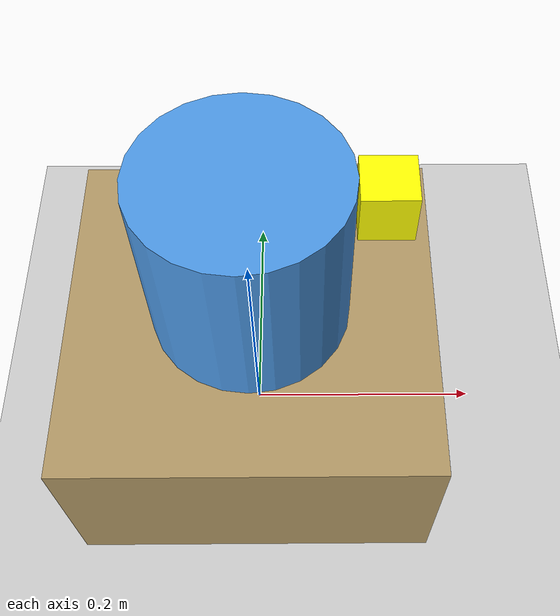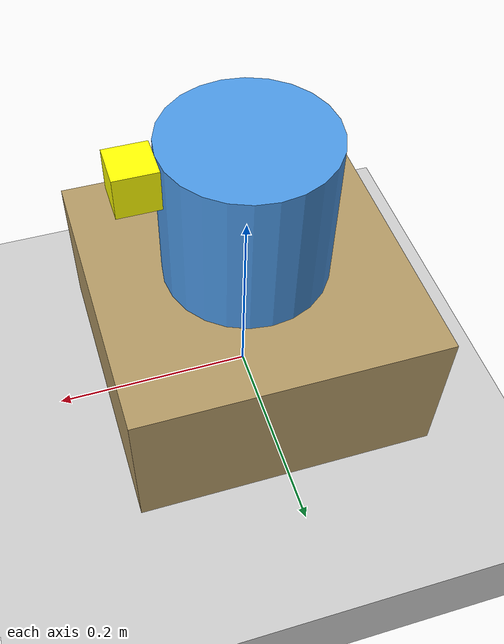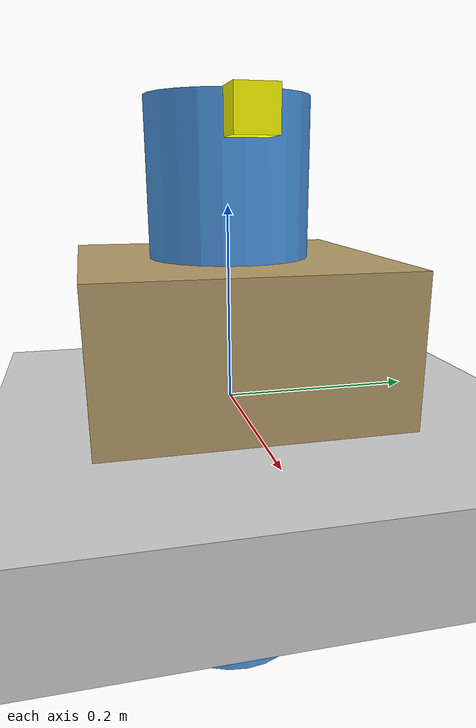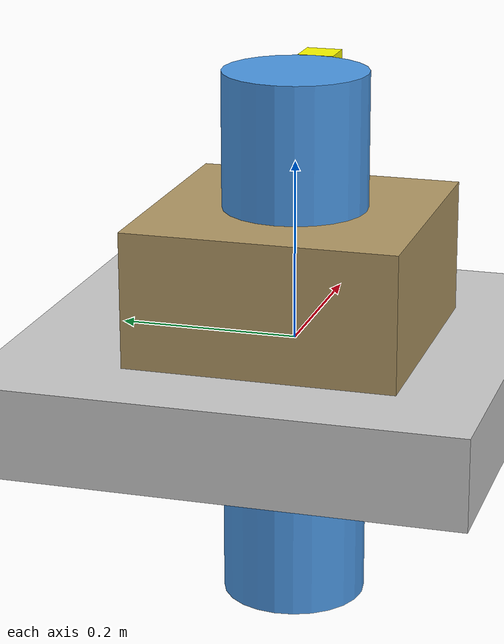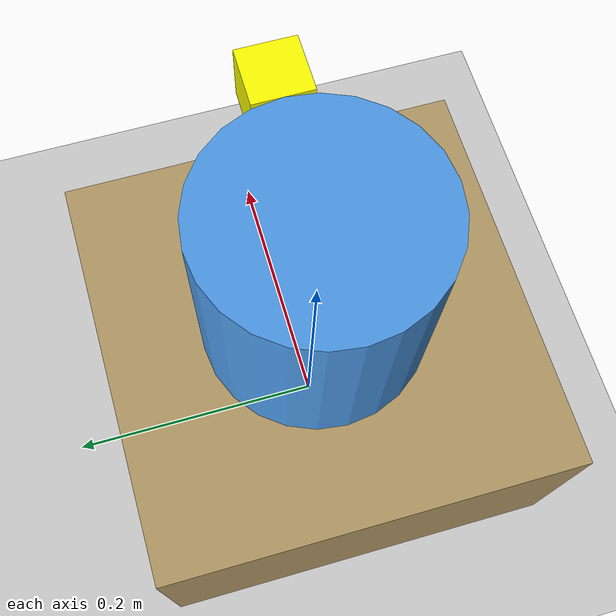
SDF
<sdf version="1.10">
 <world name="default">
  <scene>
   <ambient>0.300000012 0.300000012 0.300000012 1</ambient>
   <background>0.300000012 0.300000012 0.300000012 1</background>
   <shadows>true</shadows>
  </scene>
  <gravity>0 0 -9.8000000000000007</gravity>
  <magnetic_field>5.5644999999999998e-06 2.2875799999999999e-05 -4.2388400000000002e-05</magnetic_field>
  <atmosphere type="adiabatic"/>
  <physics type="ode">
   <max_step_size>0.001</max_step_size>
   <real_time_factor>1</real_time_factor>
   <real_time_update_rate>1000</real_time_update_rate>
  </physics>
  <model name="ground">
   <static>true</static>
   <link name="link">
    <pose>0 0 -0.050000000000000003 0 0 0</pose>
    <visual name="visual">
     <geometry><box><size>20 20 0.10000000000000001</size></box></geometry>
     <material>
      <ambient>0.400000006 0.400000006 0.400000006 1</ambient>
      <diffuse>0.800000012 0.800000012 0.800000012 1</diffuse>
     </material>
    </visual>
    <collision name="collision"><geometry><box><size>20 20 0.10000000000000001</size></box></geometry></collision>
    <inertial>
     <mass>1</mass>
     <inertia><ixx>1</ixx><ixy>0</ixy><ixz>0</ixz><iyy>1</iyy><iyz>0</iyz><izz>1</izz></inertia>
    </inertial>
   </link>
  </model>
  <model name="robot_with_camera">
   <link name="chassis_x">
    <inertial>
     <mass>0.001</mass>
     <inertia><ixx>1e-06</ixx><iyy>1e-06</iyy><izz>1e-06</izz><ixy>0</ixy><ixz>0</ixz><iyz>0</iyz></inertia>
    </inertial>
   </link>
   <joint name="drive_x_joint" type="prismatic">
    <parent>world</parent>
    <child>chassis_x</child>
    <axis>
     <xyz>1 0 0</xyz>
     <limit><lower>-9</lower><upper>9</upper></limit>
     <dynamics><damping>1.0</damping><friction>0</friction></dynamics>
    </axis>
   </joint>
   <link name="chassis_y">
    <inertial>
     <mass>0.001</mass>
     <inertia><ixx>1e-06</ixx><iyy>1e-06</iyy><izz>1e-06</izz><ixy>0</ixy><ixz>0</ixz><iyz>0</iyz></inertia>
    </inertial>
   </link>
   <joint name="drive_y_joint" type="prismatic">
    <parent>chassis_x</parent>
    <child>chassis_y</child>
    <axis>
     <xyz>0 1 0</xyz>
     <limit><lower>-9</lower><upper>9</upper></limit>
     <dynamics><damping>1.0</damping><friction>0</friction></dynamics>
    </axis>
   </joint>
   <link name="base">
    <pose>0 0 0.074999999999999997 0 0 0</pose>
    <inertial>
     <mass>0.5</mass>
     <inertia><ixx>0.01</ixx><iyy>0.01</iyy><izz>0.01</izz><ixy>0</ixy><ixz>0</ixz><iyz>0</iyz></inertia>
    </inertial>
    <visual name="base_visual">
     <geometry><box><size>0.29999999999999999 0.29999999999999999 0.14999999999999999</size></box></geometry>
     <material>
      <ambient>0.5 0.400000006 0.300000012 1</ambient>
      <diffuse>0.699999988 0.600000024 0.400000006 1</diffuse>
     </material>
    </visual>
    <collision name="base_collision">
     <geometry><box><size>0.29999999999999999 0.29999999999999999 0.14999999999999999</size></box></geometry>
    </collision>
   </link>
   <joint name="base_yaw_joint" type="revolute">
    <parent>chassis_y</parent>
    <child>base</child>
    <axis><xyz>0 0 1</xyz><dynamics><damping>5</damping><friction>0</friction></dynamics></axis>
   </joint>
   <link name="cylinder">
    <inertial>
     <mass>0.0001</mass>
     <inertia>
      <ixx>9.9999999999999995e-07</ixx>
      <iyy>9.9999999999999995e-07</iyy>
      <izz>9.9999999999999995e-07</izz>
      <ixy>0</ixy>
      <ixz>0</ixz>
      <iyz>0</iyz>
     </inertia>
    </inertial>
    <visual name="cylinder_visual">
     <geometry>
      <cylinder><radius>0.080000000000000002</radius><length>0.59999999999999998</length></cylinder>
     </geometry>
     <material>
      <ambient>0.200000003 0.5 0.800000012 1</ambient>
      <diffuse>0.300000012 0.600000024 0.899999976 1</diffuse>
     </material>
    </visual>
    <collision name="cylinder_collision">
     <geometry>
      <cylinder><radius>0.080000000000000002</radius><length>0.59999999999999998</length></cylinder>
     </geometry>
    </collision>
    <visual name="rotation_marker">
     <pose>0.10000000000000001 0 0.28000000000000003 0 0 0</pose>
     <geometry><box><size>0.040000000000000001 0.040000000000000001 0.040000000000000001</size></box></geometry>
     <material><ambient>1 1 0 1</ambient><diffuse>1 1 0 1</diffuse></material>
    </visual>
    <sensor name="camera" type="camera">
     <pose>0.10000000000000001 0 0.28000000000000003 0 0 0</pose>
     <topic>/camera</topic>
     <update_rate>30</update_rate>
     <enable_metrics>false</enable_metrics>
     <camera name="__default__">
      <horizontal_fov>1.0469999999999999</horizontal_fov>
      <image><width>640</width><height>480</height><format>RGB_INT8</format><anti_aliasing>4</anti_aliasing></image>
      <camera_info_topic>/camera/camera_info</camera_info_topic>
      <triggered>false</triggered>
      <clip><near>0.10000000000000001</near><far>100</far></clip>
      <save enabled="false"><path>__default__</path></save>
      <visibility_mask>4294967295</visibility_mask>
      <noise><type>none</type><mean>0</mean><stddev>0</stddev></noise>
      <distortion><k1>0</k1><k2>0</k2><k3>0</k3><p1>0</p1><p2>0</p2><center>0.5 0.5</center></distortion>
      <lens>
       <type>stereographic</type>
       <scale_to_hfov>true</scale_to_hfov>
       <cutoff_angle>1.5707963267948966</cutoff_angle>
       <env_texture_size>256</env_texture_size>
      </lens>
     </camera>
    </sensor>
    <sensor name="depth_camera" type="depth_camera">
     <pose>0.10000000000000001 0 0.28000000000000003 0 0 0</pose>
     <topic>/depth_camera</topic>
     <update_rate>15</update_rate>
     <enable_metrics>false</enable_metrics>
     <camera name="__default__">
      <horizontal_fov>1.0469999999999999</horizontal_fov>
      <image><width>640</width><height>480</height><format>R_FLOAT32</format></image>
      <clip><near>0.10000000000000001</near><far>20</far></clip>
      <noise><type>none</type><mean>0</mean><stddev>0</stddev></noise>
      <depth_camera><output>depths</output></depth_camera>
     </camera>
    </sensor>
   </link>
   <joint name="camera_joint" type="fixed">
    <parent>base</parent>
    <child>cylinder</child>
    <pose>0 0 0.17500000000000004 0 0 0</pose>
   </joint>
   <plugin name="gz::sim::systems::JointPositionController" filename="gz-sim-joint-position-controller-system">
    <joint_name>base_yaw_joint</joint_name>
    <topic>camera_joint_controller/commands</topic>
    <p_gain>15.0</p_gain>
    <i_gain>0.0</i_gain>
    <d_gain>20.0</d_gain>
   </plugin>
   <plugin name="gz::sim::systems::JointStatePublisher" filename="gz-sim-joint-state-publisher-system">
    <topic>joint_state</topic>
    <joint_name>drive_x_joint</joint_name>
    <joint_name>drive_y_joint</joint_name>
    <joint_name>base_yaw_joint</joint_name>
   </plugin>
   <plugin name="gz::sim::systems::JointPositionController" filename="gz-sim-joint-position-controller-system">
    <joint_name>drive_x_joint</joint_name>
    <topic>drive_x/commands</topic>
    <p_gain>30.0</p_gain>
    <i_gain>0.0</i_gain>
    <d_gain>10.0</d_gain>
   </plugin>
   <plugin name="gz::sim::systems::JointPositionController" filename="gz-sim-joint-position-controller-system">
    <joint_name>drive_y_joint</joint_name>
    <topic>drive_y/commands</topic>
    <p_gain>30.0</p_gain>
    <i_gain>0.0</i_gain>
    <d_gain>10.0</d_gain>
   </plugin>
   <plugin name="gz::sim::systems::Sensors" filename="gz-sim-sensors-system"/>
   <static>false</static>
  </model>
  <light name="sun" type="directional">
   <pose>0 0 10 0 0 0</pose>
   <intensity>1</intensity>
   <direction>0.5 0.10000000000000001 -1</direction>
   <diffuse>0.899999976 0.899999976 0.899999976 1</diffuse>
   <specular>0.300000012 0.300000012 0.300000012 1</specular>
   <attenuation><range>10</range><linear>1</linear><constant>1</constant><quadratic>0</quadratic></attenuation>
   <spot><inner_angle>0</inner_angle><outer_angle>0</outer_angle><falloff>0</falloff></spot>
  </light>
 </world>
</sdf>
